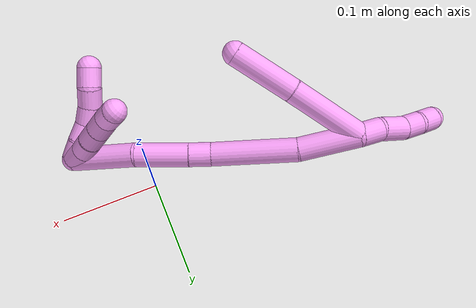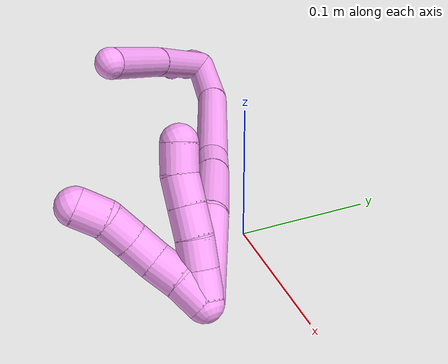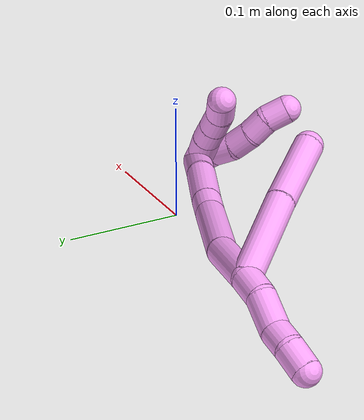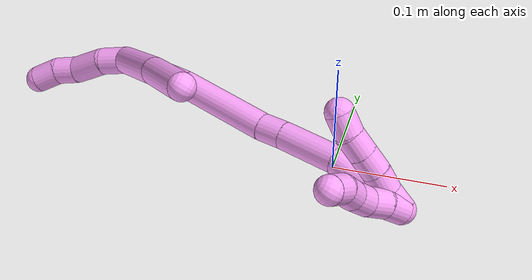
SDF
<sdf version="1.7">
 <world name="default">
  <model name="4">
   <static>0</static>
   <link name="4">
    <collision name="collision-cylinder-e_1_2_8">
     <pose>0.035897 -0.017469 -0.010368 2.10641 1.05583 1.59466</pose>
     <geometry><cylinder><radius>0.0125</radius><length>0.082494</length></cylinder></geometry>
     <surface>
      <friction><ode><mu>1.16</mu><mu2>1.16</mu2><slip1>0</slip1><slip2>0</slip2></ode></friction>
      <contact><ode><kp>1e+06</kp><kd>1</kd><max_vel>0</max_vel><min_depth>0.001</min_depth></ode></contact>
     </surface>
    </collision>
    <visual name="visual-cylinder-e_1_2_8">
     <pose>0.035897 -0.017469 -0.010368 2.10641 1.05583 1.59466</pose>
     <geometry><cylinder><radius>0.0125</radius><length>0.082494</length></cylinder></geometry>
     <material><ambient>1 0.65098 0.996078 1</ambient></material>
    </visual>
    <collision name="collision-cylinder-e_2_8_6">
     <pose>0.100085 -0.05073 -0.030202 2.11085 0.993848 1.5273</pose>
     <geometry><cylinder><radius>0.0125</radius><length>0.067506</length></cylinder></geometry>
     <surface>
      <friction><ode><mu>1.16</mu><mu2>1.16</mu2><slip1>0</slip1><slip2>0</slip2></ode></friction>
      <contact><ode><kp>1e+06</kp><kd>1</kd><max_vel>0</max_vel><min_depth>0.001</min_depth></ode></contact>
     </surface>
    </collision>
    <visual name="visual-cylinder-e_2_8_6">
     <pose>0.100085 -0.05073 -0.030202 2.11085 0.993848 1.5273</pose>
     <geometry><cylinder><radius>0.0125</radius><length>0.067506</length></cylinder></geometry>
     <material><ambient>1 0.65098 0.996078 1</ambient></material>
    </visual>
    <collision name="collision-cylinder-e_1_2_9">
     <pose>-0.008025 -0.002341 0.008811 0.259679 -0.721798 -0.098485</pose>
     <geometry><cylinder><radius>0.0125</radius><length>0.02429</length></cylinder></geometry>
     <surface>
      <friction><ode><mu>1.16</mu><mu2>1.16</mu2><slip1>0</slip1><slip2>0</slip2></ode></friction>
      <contact><ode><kp>1e+06</kp><kd>1</kd><max_vel>0</max_vel><min_depth>0.001</min_depth></ode></contact>
     </surface>
    </collision>
    <visual name="visual-cylinder-e_1_2_9">
     <pose>-0.008025 -0.002341 0.008811 0.259679 -0.721798 -0.098485</pose>
     <geometry><cylinder><radius>0.0125</radius><length>0.02429</length></cylinder></geometry>
     <material><ambient>1 0.65098 0.996078 1</ambient></material>
    </visual>
    <collision name="collision-cylinder-e_2_9_10">
     <pose>-0.029695 -0.008167 0.025544 0.414452 -1.00552 -0.230202</pose>
     <geometry><cylinder><radius>0.0125</radius><length>0.032318</length></cylinder></geometry>
     <surface>
      <friction><ode><mu>1.16</mu><mu2>1.16</mu2><slip1>0</slip1><slip2>0</slip2></ode></friction>
      <contact><ode><kp>1e+06</kp><kd>1</kd><max_vel>0</max_vel><min_depth>0.001</min_depth></ode></contact>
     </surface>
    </collision>
    <visual name="visual-cylinder-e_2_9_10">
     <pose>-0.029695 -0.008167 0.025544 0.414452 -1.00552 -0.230202</pose>
     <geometry><cylinder><radius>0.0125</radius><length>0.032318</length></cylinder></geometry>
     <material><ambient>1 0.65098 0.996078 1</ambient></material>
    </visual>
    <collision name="collision-cylinder-e_3_10_11">
     <pose>-0.049935 -0.013806 0.040839 0.284185 -0.70951 -0.105885</pose>
     <geometry><cylinder><radius>0.0125</radius><length>0.020247</length></cylinder></geometry>
     <surface>
      <friction><ode><mu>1.16</mu><mu2>1.16</mu2><slip1>0</slip1><slip2>0</slip2></ode></friction>
      <contact><ode><kp>1e+06</kp><kd>1</kd><max_vel>0</max_vel><min_depth>0.001</min_depth></ode></contact>
     </surface>
    </collision>
    <visual name="visual-cylinder-e_3_10_11">
     <pose>-0.049935 -0.013806 0.040839 0.284185 -0.70951 -0.105885</pose>
     <geometry><cylinder><radius>0.0125</radius><length>0.020247</length></cylinder></geometry>
     <material><ambient>1 0.65098 0.996078 1</ambient></material>
    </visual>
    <collision name="collision-cylinder-e_4_11_5">
     <pose>-0.065183 -0.020723 0.05424 0.668752 -0.844679 -0.309749</pose>
     <geometry><cylinder><radius>0.0125</radius><length>0.023145</length></cylinder></geometry>
     <surface>
      <friction><ode><mu>1.16</mu><mu2>1.16</mu2><slip1>0</slip1><slip2>0</slip2></ode></friction>
      <contact><ode><kp>1e+06</kp><kd>1</kd><max_vel>0</max_vel><min_depth>0.001</min_depth></ode></contact>
     </surface>
    </collision>
    <visual name="visual-cylinder-e_4_11_5">
     <pose>-0.065183 -0.020723 0.05424 0.668752 -0.844679 -0.309749</pose>
     <geometry><cylinder><radius>0.0125</radius><length>0.023145</length></cylinder></geometry>
     <material><ambient>1 0.65098 0.996078 1</ambient></material>
    </visual>
    <collision name="collision-cylinder-e_1_2_12">
     <pose>0.014864 -0.003635 -0.027811 3.01164 0.48732 2.62959</pose>
     <geometry><cylinder><radius>0.0125</radius><length>0.063486</length></cylinder></geometry>
     <surface>
      <friction><ode><mu>1.16</mu><mu2>1.16</mu2><slip1>0</slip1><slip2>0</slip2></ode></friction>
      <contact><ode><kp>1e+06</kp><kd>1</kd><max_vel>0</max_vel><min_depth>0.001</min_depth></ode></contact>
     </surface>
    </collision>
    <visual name="visual-cylinder-e_1_2_12">
     <pose>0.014864 -0.003635 -0.027811 3.01164 0.48732 2.62959</pose>
     <geometry><cylinder><radius>0.0125</radius><length>0.063486</length></cylinder></geometry>
     <material><ambient>1 0.65098 0.996078 1</ambient></material>
    </visual>
    <collision name="collision-cylinder-e_2_12_13">
     <pose>0.053103 -0.019554 -0.091335 2.81029 0.55423 2.07884</pose>
     <geometry><cylinder><radius>0.0125</radius><length>0.088831</length></cylinder></geometry>
     <surface>
      <friction><ode><mu>1.16</mu><mu2>1.16</mu2><slip1>0</slip1><slip2>0</slip2></ode></friction>
      <contact><ode><kp>1e+06</kp><kd>1</kd><max_vel>0</max_vel><min_depth>0.001</min_depth></ode></contact>
     </surface>
    </collision>
    <visual name="visual-cylinder-e_2_12_13">
     <pose>0.053103 -0.019554 -0.091335 2.81029 0.55423 2.07884</pose>
     <geometry><cylinder><radius>0.0125</radius><length>0.088831</length></cylinder></geometry>
     <material><ambient>1 0.65098 0.996078 1</ambient></material>
    </visual>
    <collision name="collision-cylinder-e_3_13_14">
     <pose>0.083716 -0.034216 -0.135739 2.87451 0.676712 2.4122</pose>
     <geometry><cylinder><radius>0.0125</radius><length>0.023113</length></cylinder></geometry>
     <surface>
      <friction><ode><mu>1.16</mu><mu2>1.16</mu2><slip1>0</slip1><slip2>0</slip2></ode></friction>
      <contact><ode><kp>1e+06</kp><kd>1</kd><max_vel>0</max_vel><min_depth>0.001</min_depth></ode></contact>
     </surface>
    </collision>
    <visual name="visual-cylinder-e_3_13_14">
     <pose>0.083716 -0.034216 -0.135739 2.87451 0.676712 2.4122</pose>
     <geometry><cylinder><radius>0.0125</radius><length>0.023113</length></cylinder></geometry>
     <material><ambient>1 0.65098 0.996078 1</ambient></material>
    </visual>
    <collision name="collision-cylinder-e_4_14_15">
     <pose>0.107596 -0.043619 -0.165085 2.81377 0.651657 2.23114</pose>
     <geometry><cylinder><radius>0.0125</radius><length>0.054881</length></cylinder></geometry>
     <surface>
      <friction><ode><mu>1.16</mu><mu2>1.16</mu2><slip1>0</slip1><slip2>0</slip2></ode></friction>
      <contact><ode><kp>1e+06</kp><kd>1</kd><max_vel>0</max_vel><min_depth>0.001</min_depth></ode></contact>
     </surface>
    </collision>
    <visual name="visual-cylinder-e_4_14_15">
     <pose>0.107596 -0.043619 -0.165085 2.81377 0.651657 2.23114</pose>
     <geometry><cylinder><radius>0.0125</radius><length>0.054881</length></cylinder></geometry>
     <material><ambient>1 0.65098 0.996078 1</ambient></material>
    </visual>
    <collision name="collision-cylinder-e_5_15_1">
     <pose>0.138294 -0.063592 -0.214877 2.72341 0.415216 1.56347</pose>
     <geometry><cylinder><radius>0.0125</radius><length>0.069689</length></cylinder></geometry>
     <surface>
      <friction><ode><mu>1.16</mu><mu2>1.16</mu2><slip1>0</slip1><slip2>0</slip2></ode></friction>
      <contact><ode><kp>1e+06</kp><kd>1</kd><max_vel>0</max_vel><min_depth>0.001</min_depth></ode></contact>
     </surface>
    </collision>
    <visual name="visual-cylinder-e_5_15_1">
     <pose>0.138294 -0.063592 -0.214877 2.72341 0.415216 1.56347</pose>
     <geometry><cylinder><radius>0.0125</radius><length>0.069689</length></cylinder></geometry>
     <material><ambient>1 0.65098 0.996078 1</ambient></material>
    </visual>
    <collision name="collision-cylinder-e_1_1_16">
     <pose>0.154367 -0.07346 -0.234715 -0.319879 0.203036 -0.032863</pose>
     <geometry><cylinder><radius>0.0125</radius><length>0.02</length></cylinder></geometry>
     <surface>
      <friction><ode><mu>1.16</mu><mu2>1.16</mu2><slip1>0</slip1><slip2>0</slip2></ode></friction>
      <contact><ode><kp>1e+06</kp><kd>1</kd><max_vel>0</max_vel><min_depth>0.001</min_depth></ode></contact>
     </surface>
    </collision>
    <visual name="visual-cylinder-e_1_1_16">
     <pose>0.154367 -0.07346 -0.234715 -0.319879 0.203036 -0.032863</pose>
     <geometry><cylinder><radius>0.0125</radius><length>0.02</length></cylinder></geometry>
     <material><ambient>1 0.65098 0.996078 1</ambient></material>
    </visual>
    <collision name="collision-cylinder-e_2_16_17">
     <pose>0.160091 -0.067163 -0.216705 -0.353691 0.379906 -0.068696</pose>
     <geometry><cylinder><radius>0.0125</radius><length>0.02</length></cylinder></geometry>
     <surface>
      <friction><ode><mu>1.16</mu><mu2>1.16</mu2><slip1>0</slip1><slip2>0</slip2></ode></friction>
      <contact><ode><kp>1e+06</kp><kd>1</kd><max_vel>0</max_vel><min_depth>0.001</min_depth></ode></contact>
     </surface>
    </collision>
    <visual name="visual-cylinder-e_2_16_17">
     <pose>0.160091 -0.067163 -0.216705 -0.353691 0.379906 -0.068696</pose>
     <geometry><cylinder><radius>0.0125</radius><length>0.02</length></cylinder></geometry>
     <material><ambient>1 0.65098 0.996078 1</ambient></material>
    </visual>
    <collision name="collision-cylinder-e_3_17_18">
     <pose>0.166926 -0.061517 -0.198811 -0.258682 0.317991 -0.041706</pose>
     <geometry><cylinder><radius>0.0125</radius><length>0.02</length></cylinder></geometry>
     <surface>
      <friction><ode><mu>1.16</mu><mu2>1.16</mu2><slip1>0</slip1><slip2>0</slip2></ode></friction>
      <contact><ode><kp>1e+06</kp><kd>1</kd><max_vel>0</max_vel><min_depth>0.001</min_depth></ode></contact>
     </surface>
    </collision>
    <visual name="visual-cylinder-e_3_17_18">
     <pose>0.166926 -0.061517 -0.198811 -0.258682 0.317991 -0.041706</pose>
     <geometry><cylinder><radius>0.0125</radius><length>0.02</length></cylinder></geometry>
     <material><ambient>1 0.65098 0.996078 1</ambient></material>
    </visual>
    <collision name="collision-cylinder-e_4_18_19">
     <pose>0.173223 -0.056626 -0.180468 -0.262434 0.322546 -0.042934</pose>
     <geometry><cylinder><radius>0.0125</radius><length>0.02</length></cylinder></geometry>
     <surface>
      <friction><ode><mu>1.16</mu><mu2>1.16</mu2><slip1>0</slip1><slip2>0</slip2></ode></friction>
      <contact><ode><kp>1e+06</kp><kd>1</kd><max_vel>0</max_vel><min_depth>0.001</min_depth></ode></contact>
     </surface>
    </collision>
    <visual name="visual-cylinder-e_4_18_19">
     <pose>0.173223 -0.056626 -0.180468 -0.262434 0.322546 -0.042934</pose>
     <geometry><cylinder><radius>0.0125</radius><length>0.02</length></cylinder></geometry>
     <material><ambient>1 0.65098 0.996078 1</ambient></material>
    </visual>
    <collision name="collision-cylinder-e_5_19_4">
     <pose>0.179768 -0.04966 -0.163044 -0.499123 0.344282 -0.088568</pose>
     <geometry><cylinder><radius>0.0125</radius><length>0.02</length></cylinder></geometry>
     <surface>
      <friction><ode><mu>1.16</mu><mu2>1.16</mu2><slip1>0</slip1><slip2>0</slip2></ode></friction>
      <contact><ode><kp>1e+06</kp><kd>1</kd><max_vel>0</max_vel><min_depth>0.001</min_depth></ode></contact>
     </surface>
    </collision>
    <visual name="visual-cylinder-e_5_19_4">
     <pose>0.179768 -0.04966 -0.163044 -0.499123 0.344282 -0.088568</pose>
     <geometry><cylinder><radius>0.0125</radius><length>0.02</length></cylinder></geometry>
     <material><ambient>1 0.65098 0.996078 1</ambient></material>
    </visual>
    <collision name="collision-cylinder-e_1_1_20">
     <pose>0.155741 -0.079772 -0.235178 0.35077 0.345906 0.061895</pose>
     <geometry><cylinder><radius>0.0125</radius><length>0.02</length></cylinder></geometry>
     <surface>
      <friction><ode><mu>1.16</mu><mu2>1.16</mu2><slip1>0</slip1><slip2>0</slip2></ode></friction>
      <contact><ode><kp>1e+06</kp><kd>1</kd><max_vel>0</max_vel><min_depth>0.001</min_depth></ode></contact>
     </surface>
    </collision>
    <visual name="visual-cylinder-e_1_1_20">
     <pose>0.155741 -0.079772 -0.235178 0.35077 0.345906 0.061895</pose>
     <geometry><cylinder><radius>0.0125</radius><length>0.02</length></cylinder></geometry>
     <material><ambient>1 0.65098 0.996078 1</ambient></material>
    </visual>
    <collision name="collision-cylinder-e_2_20_21">
     <pose>0.16133 -0.087539 -0.217706 0.483384 0.221712 0.054866</pose>
     <geometry><cylinder><radius>0.0125</radius><length>0.02</length></cylinder></geometry>
     <surface>
      <friction><ode><mu>1.16</mu><mu2>1.16</mu2><slip1>0</slip1><slip2>0</slip2></ode></friction>
      <contact><ode><kp>1e+06</kp><kd>1</kd><max_vel>0</max_vel><min_depth>0.001</min_depth></ode></contact>
     </surface>
    </collision>
    <visual name="visual-cylinder-e_2_20_21">
     <pose>0.16133 -0.087539 -0.217706 0.483384 0.221712 0.054866</pose>
     <geometry><cylinder><radius>0.0125</radius><length>0.02</length></cylinder></geometry>
     <material><ambient>1 0.65098 0.996078 1</ambient></material>
    </visual>
    <collision name="collision-cylinder-e_3_21_22">
     <pose>0.168345 -0.095496 -0.201 0.401247 0.502454 0.104289</pose>
     <geometry><cylinder><radius>0.0125</radius><length>0.02</length></cylinder></geometry>
     <surface>
      <friction><ode><mu>1.16</mu><mu2>1.16</mu2><slip1>0</slip1><slip2>0</slip2></ode></friction>
      <contact><ode><kp>1e+06</kp><kd>1</kd><max_vel>0</max_vel><min_depth>0.001</min_depth></ode></contact>
     </surface>
    </collision>
    <visual name="visual-cylinder-e_3_21_22">
     <pose>0.168345 -0.095496 -0.201 0.401247 0.502454 0.104289</pose>
     <geometry><cylinder><radius>0.0125</radius><length>0.02</length></cylinder></geometry>
     <material><ambient>1 0.65098 0.996078 1</ambient></material>
    </visual>
    <collision name="collision-cylinder-e_4_22_23">
     <pose>0.179568 -0.102067 -0.18593 0.422438 0.695471 0.155125</pose>
     <geometry><cylinder><radius>0.0125</radius><length>0.02</length></cylinder></geometry>
     <surface>
      <friction><ode><mu>1.16</mu><mu2>1.16</mu2><slip1>0</slip1><slip2>0</slip2></ode></friction>
      <contact><ode><kp>1e+06</kp><kd>1</kd><max_vel>0</max_vel><min_depth>0.001</min_depth></ode></contact>
     </surface>
    </collision>
    <visual name="visual-cylinder-e_4_22_23">
     <pose>0.179568 -0.102067 -0.18593 0.422438 0.695471 0.155125</pose>
     <geometry><cylinder><radius>0.0125</radius><length>0.02</length></cylinder></geometry>
     <material><ambient>1 0.65098 0.996078 1</ambient></material>
    </visual>
    <collision name="collision-cylinder-e_5_23_3">
     <pose>0.190975 -0.111237 -0.172703 0.768983 0.523504 0.215956</pose>
     <geometry><cylinder><radius>0.0125</radius><length>0.02</length></cylinder></geometry>
     <surface>
      <friction><ode><mu>1.16</mu><mu2>1.16</mu2><slip1>0</slip1><slip2>0</slip2></ode></friction>
      <contact><ode><kp>1e+06</kp><kd>1</kd><max_vel>0</max_vel><min_depth>0.001</min_depth></ode></contact>
     </surface>
    </collision>
    <visual name="visual-cylinder-e_5_23_3">
     <pose>0.190975 -0.111237 -0.172703 0.768983 0.523504 0.215956</pose>
     <geometry><cylinder><radius>0.0125</radius><length>0.02</length></cylinder></geometry>
     <material><ambient>1 0.65098 0.996078 1</ambient></material>
    </visual>
    <collision name="collision-sphere-3">
     <pose>0.195974 -0.11726 -0.16648 0 -0 0</pose>
     <geometry><sphere><radius>0.0125</radius></sphere></geometry>
     <surface>
      <friction><ode><mu>1.16</mu><mu2>1.16</mu2><slip1>0</slip1><slip2>0</slip2></ode></friction>
      <contact><ode><kp>1e+06</kp><kd>1</kd><max_vel>0</max_vel><min_depth>0.001</min_depth></ode></contact>
     </surface>
    </collision>
    <visual name="visual-sphere-3">
     <pose>0.195974 -0.11726 -0.16648 0 -0 0</pose>
     <geometry><sphere><radius>0.0125</radius></sphere></geometry>
     <material><ambient>1 0.65098 0.996078 1</ambient></material>
    </visual>
    <collision name="collision-sphere-23">
     <pose>0.185976 -0.105214 -0.178927 0 -0 0</pose>
     <geometry><sphere><radius>0.0125</radius></sphere></geometry>
     <surface>
      <friction><ode><mu>1.16</mu><mu2>1.16</mu2><slip1>0</slip1><slip2>0</slip2></ode></friction>
      <contact><ode><kp>1e+06</kp><kd>1</kd><max_vel>0</max_vel><min_depth>0.001</min_depth></ode></contact>
     </surface>
    </collision>
    <visual name="visual-sphere-23">
     <pose>0.185976 -0.105214 -0.178927 0 -0 0</pose>
     <geometry><sphere><radius>0.0125</radius></sphere></geometry>
     <material><ambient>1 0.65098 0.996078 1</ambient></material>
    </visual>
    <collision name="collision-sphere-22">
     <pose>0.173161 -0.098919 -0.192932 0 -0 0</pose>
     <geometry><sphere><radius>0.0125</radius></sphere></geometry>
     <surface>
      <friction><ode><mu>1.16</mu><mu2>1.16</mu2><slip1>0</slip1><slip2>0</slip2></ode></friction>
      <contact><ode><kp>1e+06</kp><kd>1</kd><max_vel>0</max_vel><min_depth>0.001</min_depth></ode></contact>
     </surface>
    </collision>
    <visual name="visual-sphere-22">
     <pose>0.173161 -0.098919 -0.192932 0 -0 0</pose>
     <geometry><sphere><radius>0.0125</radius></sphere></geometry>
     <material><ambient>1 0.65098 0.996078 1</ambient></material>
    </visual>
    <collision name="collision-sphere-21">
     <pose>0.163529 -0.092073 -0.209068 0 -0 0</pose>
     <geometry><sphere><radius>0.0125</radius></sphere></geometry>
     <surface>
      <friction><ode><mu>1.16</mu><mu2>1.16</mu2><slip1>0</slip1><slip2>0</slip2></ode></friction>
      <contact><ode><kp>1e+06</kp><kd>1</kd><max_vel>0</max_vel><min_depth>0.001</min_depth></ode></contact>
     </surface>
    </collision>
    <visual name="visual-sphere-21">
     <pose>0.163529 -0.092073 -0.209068 0 -0 0</pose>
     <geometry><sphere><radius>0.0125</radius></sphere></geometry>
     <material><ambient>1 0.65098 0.996078 1</ambient></material>
    </visual>
    <collision name="collision-sphere-20">
     <pose>0.159131 -0.083005 -0.226343 0 -0 0</pose>
     <geometry><sphere><radius>0.0125</radius></sphere></geometry>
     <surface>
      <friction><ode><mu>1.16</mu><mu2>1.16</mu2><slip1>0</slip1><slip2>0</slip2></ode></friction>
      <contact><ode><kp>1e+06</kp><kd>1</kd><max_vel>0</max_vel><min_depth>0.001</min_depth></ode></contact>
     </surface>
    </collision>
    <visual name="visual-sphere-20">
     <pose>0.159131 -0.083005 -0.226343 0 -0 0</pose>
     <geometry><sphere><radius>0.0125</radius></sphere></geometry>
     <material><ambient>1 0.65098 0.996078 1</ambient></material>
    </visual>
    <collision name="collision-sphere-4">
     <pose>0.183143 -0.045154 -0.154779 0 -0 0</pose>
     <geometry><sphere><radius>0.0125</radius></sphere></geometry>
     <surface>
      <friction><ode><mu>1.16</mu><mu2>1.16</mu2><slip1>0</slip1><slip2>0</slip2></ode></friction>
      <contact><ode><kp>1e+06</kp><kd>1</kd><max_vel>0</max_vel><min_depth>0.001</min_depth></ode></contact>
     </surface>
    </collision>
    <visual name="visual-sphere-4">
     <pose>0.183143 -0.045154 -0.154779 0 -0 0</pose>
     <geometry><sphere><radius>0.0125</radius></sphere></geometry>
     <material><ambient>1 0.65098 0.996078 1</ambient></material>
    </visual>
    <collision name="collision-sphere-11">
     <pose>-0.05653 -0.015959 0.048211 0 -0 0</pose>
     <geometry><sphere><radius>0.0125</radius></sphere></geometry>
     <surface>
      <friction><ode><mu>1.16</mu><mu2>1.16</mu2><slip1>0</slip1><slip2>0</slip2></ode></friction>
      <contact><ode><kp>1e+06</kp><kd>1</kd><max_vel>0</max_vel><min_depth>0.001</min_depth></ode></contact>
     </surface>
    </collision>
    <visual name="visual-sphere-11">
     <pose>-0.05653 -0.015959 0.048211 0 -0 0</pose>
     <geometry><sphere><radius>0.0125</radius></sphere></geometry>
     <material><ambient>1 0.65098 0.996078 1</ambient></material>
    </visual>
    <collision name="collision-sphere-10">
     <pose>-0.04334 -0.011652 0.033467 0 -0 0</pose>
     <geometry><sphere><radius>0.0125</radius></sphere></geometry>
     <surface>
      <friction><ode><mu>1.16</mu><mu2>1.16</mu2><slip1>0</slip1><slip2>0</slip2></ode></friction>
      <contact><ode><kp>1e+06</kp><kd>1</kd><max_vel>0</max_vel><min_depth>0.001</min_depth></ode></contact>
     </surface>
    </collision>
    <visual name="visual-sphere-10">
     <pose>-0.04334 -0.011652 0.033467 0 -0 0</pose>
     <geometry><sphere><radius>0.0125</radius></sphere></geometry>
     <material><ambient>1 0.65098 0.996078 1</ambient></material>
    </visual>
    <collision name="collision-sphere-6">
     <pose>0.128374 -0.066521 -0.039669 0 -0 0</pose>
     <geometry><sphere><radius>0.0125</radius></sphere></geometry>
     <surface>
      <friction><ode><mu>1.16</mu><mu2>1.16</mu2><slip1>0</slip1><slip2>0</slip2></ode></friction>
      <contact><ode><kp>1e+06</kp><kd>1</kd><max_vel>0</max_vel><min_depth>0.001</min_depth></ode></contact>
     </surface>
    </collision>
    <visual name="visual-sphere-6">
     <pose>0.128374 -0.066521 -0.039669 0 -0 0</pose>
     <geometry><sphere><radius>0.0125</radius></sphere></geometry>
     <material><ambient>1 0.65098 0.996078 1</ambient></material>
    </visual>
    <collision name="collision-sphere-9">
     <pose>-0.016049 -0.004682 0.017621 0 -0 0</pose>
     <geometry><sphere><radius>0.0125</radius></sphere></geometry>
     <surface>
      <friction><ode><mu>1.16</mu><mu2>1.16</mu2><slip1>0</slip1><slip2>0</slip2></ode></friction>
      <contact><ode><kp>1e+06</kp><kd>1</kd><max_vel>0</max_vel><min_depth>0.001</min_depth></ode></contact>
     </surface>
    </collision>
    <visual name="visual-sphere-9">
     <pose>-0.016049 -0.004682 0.017621 0 -0 0</pose>
     <geometry><sphere><radius>0.0125</radius></sphere></geometry>
     <material><ambient>1 0.65098 0.996078 1</ambient></material>
    </visual>
    <collision name="collision-sphere-2">
     <geometry><sphere><radius>0.0125</radius></sphere></geometry>
     <surface>
      <friction><ode><mu>1.16</mu><mu2>1.16</mu2><slip1>0</slip1><slip2>0</slip2></ode></friction>
      <contact><ode><kp>1e+06</kp><kd>1</kd><max_vel>0</max_vel><min_depth>0.001</min_depth></ode></contact>
     </surface>
    </collision>
    <visual name="visual-sphere-2">
     <geometry><sphere><radius>0.0125</radius></sphere></geometry>
     <material><ambient>1 0.65098 0.996078 1</ambient></material>
    </visual>
    <collision name="collision-sphere-19">
     <pose>0.176393 -0.054166 -0.171309 0 -0 0</pose>
     <geometry><sphere><radius>0.0125</radius></sphere></geometry>
     <surface>
      <friction><ode><mu>1.16</mu><mu2>1.16</mu2><slip1>0</slip1><slip2>0</slip2></ode></friction>
      <contact><ode><kp>1e+06</kp><kd>1</kd><max_vel>0</max_vel><min_depth>0.001</min_depth></ode></contact>
     </surface>
    </collision>
    <visual name="visual-sphere-19">
     <pose>0.176393 -0.054166 -0.171309 0 -0 0</pose>
     <geometry><sphere><radius>0.0125</radius></sphere></geometry>
     <material><ambient>1 0.65098 0.996078 1</ambient></material>
    </visual>
    <collision name="collision-sphere-8">
     <pose>0.071795 -0.034939 -0.020736 0 -0 0</pose>
     <geometry><sphere><radius>0.0125</radius></sphere></geometry>
     <surface>
      <friction><ode><mu>1.16</mu><mu2>1.16</mu2><slip1>0</slip1><slip2>0</slip2></ode></friction>
      <contact><ode><kp>1e+06</kp><kd>1</kd><max_vel>0</max_vel><min_depth>0.001</min_depth></ode></contact>
     </surface>
    </collision>
    <visual name="visual-sphere-8">
     <pose>0.071795 -0.034939 -0.020736 0 -0 0</pose>
     <geometry><sphere><radius>0.0125</radius></sphere></geometry>
     <material><ambient>1 0.65098 0.996078 1</ambient></material>
    </visual>
    <collision name="collision-sphere-5">
     <pose>-0.073837 -0.025487 0.060269 0 -0 0</pose>
     <geometry><sphere><radius>0.0125</radius></sphere></geometry>
     <surface>
      <friction><ode><mu>1.16</mu><mu2>1.16</mu2><slip1>0</slip1><slip2>0</slip2></ode></friction>
      <contact><ode><kp>1e+06</kp><kd>1</kd><max_vel>0</max_vel><min_depth>0.001</min_depth></ode></contact>
     </surface>
    </collision>
    <visual name="visual-sphere-5">
     <pose>-0.073837 -0.025487 0.060269 0 -0 0</pose>
     <geometry><sphere><radius>0.0125</radius></sphere></geometry>
     <material><ambient>1 0.65098 0.996078 1</ambient></material>
    </visual>
    <collision name="collision-sphere-12">
     <pose>0.029728 -0.007269 -0.055623 0 -0 0</pose>
     <geometry><sphere><radius>0.0125</radius></sphere></geometry>
     <surface>
      <friction><ode><mu>1.16</mu><mu2>1.16</mu2><slip1>0</slip1><slip2>0</slip2></ode></friction>
      <contact><ode><kp>1e+06</kp><kd>1</kd><max_vel>0</max_vel><min_depth>0.001</min_depth></ode></contact>
     </surface>
    </collision>
    <visual name="visual-sphere-12">
     <pose>0.029728 -0.007269 -0.055623 0 -0 0</pose>
     <geometry><sphere><radius>0.0125</radius></sphere></geometry>
     <material><ambient>1 0.65098 0.996078 1</ambient></material>
    </visual>
    <collision name="collision-sphere-13">
     <pose>0.076478 -0.031838 -0.127048 0 -0 0</pose>
     <geometry><sphere><radius>0.0125</radius></sphere></geometry>
     <surface>
      <friction><ode><mu>1.16</mu><mu2>1.16</mu2><slip1>0</slip1><slip2>0</slip2></ode></friction>
      <contact><ode><kp>1e+06</kp><kd>1</kd><max_vel>0</max_vel><min_depth>0.001</min_depth></ode></contact>
     </surface>
    </collision>
    <visual name="visual-sphere-13">
     <pose>0.076478 -0.031838 -0.127048 0 -0 0</pose>
     <geometry><sphere><radius>0.0125</radius></sphere></geometry>
     <material><ambient>1 0.65098 0.996078 1</ambient></material>
    </visual>
    <collision name="collision-sphere-14">
     <pose>0.090953 -0.036594 -0.144429 0 -0 0</pose>
     <geometry><sphere><radius>0.0125</radius></sphere></geometry>
     <surface>
      <friction><ode><mu>1.16</mu><mu2>1.16</mu2><slip1>0</slip1><slip2>0</slip2></ode></friction>
      <contact><ode><kp>1e+06</kp><kd>1</kd><max_vel>0</max_vel><min_depth>0.001</min_depth></ode></contact>
     </surface>
    </collision>
    <visual name="visual-sphere-14">
     <pose>0.090953 -0.036594 -0.144429 0 -0 0</pose>
     <geometry><sphere><radius>0.0125</radius></sphere></geometry>
     <material><ambient>1 0.65098 0.996078 1</ambient></material>
    </visual>
    <collision name="collision-sphere-15">
     <pose>0.124238 -0.050644 -0.185741 0 -0 0</pose>
     <geometry><sphere><radius>0.0125</radius></sphere></geometry>
     <surface>
      <friction><ode><mu>1.16</mu><mu2>1.16</mu2><slip1>0</slip1><slip2>0</slip2></ode></friction>
      <contact><ode><kp>1e+06</kp><kd>1</kd><max_vel>0</max_vel><min_depth>0.001</min_depth></ode></contact>
     </surface>
    </collision>
    <visual name="visual-sphere-15">
     <pose>0.124238 -0.050644 -0.185741 0 -0 0</pose>
     <geometry><sphere><radius>0.0125</radius></sphere></geometry>
     <material><ambient>1 0.65098 0.996078 1</ambient></material>
    </visual>
    <collision name="collision-sphere-1">
     <pose>0.15235 -0.07654 -0.244013 0 -0 0</pose>
     <geometry><sphere><radius>0.0125</radius></sphere></geometry>
     <surface>
      <friction><ode><mu>1.16</mu><mu2>1.16</mu2><slip1>0</slip1><slip2>0</slip2></ode></friction>
      <contact><ode><kp>1e+06</kp><kd>1</kd><max_vel>0</max_vel><min_depth>0.001</min_depth></ode></contact>
     </surface>
    </collision>
    <visual name="visual-sphere-1">
     <pose>0.15235 -0.07654 -0.244013 0 -0 0</pose>
     <geometry><sphere><radius>0.0125</radius></sphere></geometry>
     <material><ambient>1 0.65098 0.996078 1</ambient></material>
    </visual>
    <collision name="collision-sphere-18">
     <pose>0.170053 -0.059087 -0.189628 0 -0 0</pose>
     <geometry><sphere><radius>0.0125</radius></sphere></geometry>
     <surface>
      <friction><ode><mu>1.16</mu><mu2>1.16</mu2><slip1>0</slip1><slip2>0</slip2></ode></friction>
      <contact><ode><kp>1e+06</kp><kd>1</kd><max_vel>0</max_vel><min_depth>0.001</min_depth></ode></contact>
     </surface>
    </collision>
    <visual name="visual-sphere-18">
     <pose>0.170053 -0.059087 -0.189628 0 -0 0</pose>
     <geometry><sphere><radius>0.0125</radius></sphere></geometry>
     <material><ambient>1 0.65098 0.996078 1</ambient></material>
    </visual>
    <collision name="collision-sphere-16">
     <pose>0.156383 -0.07038 -0.225418 0 -0 0</pose>
     <geometry><sphere><radius>0.0125</radius></sphere></geometry>
     <surface>
      <friction><ode><mu>1.16</mu><mu2>1.16</mu2><slip1>0</slip1><slip2>0</slip2></ode></friction>
      <contact><ode><kp>1e+06</kp><kd>1</kd><max_vel>0</max_vel><min_depth>0.001</min_depth></ode></contact>
     </surface>
    </collision>
    <visual name="visual-sphere-16">
     <pose>0.156383 -0.07038 -0.225418 0 -0 0</pose>
     <geometry><sphere><radius>0.0125</radius></sphere></geometry>
     <material><ambient>1 0.65098 0.996078 1</ambient></material>
    </visual>
    <collision name="collision-sphere-17">
     <pose>0.1638 -0.063946 -0.207993 0 -0 0</pose>
     <geometry><sphere><radius>0.0125</radius></sphere></geometry>
     <surface>
      <friction><ode><mu>1.16</mu><mu2>1.16</mu2><slip1>0</slip1><slip2>0</slip2></ode></friction>
      <contact><ode><kp>1e+06</kp><kd>1</kd><max_vel>0</max_vel><min_depth>0.001</min_depth></ode></contact>
     </surface>
    </collision>
    <visual name="visual-sphere-17">
     <pose>0.1638 -0.063946 -0.207993 0 -0 0</pose>
     <geometry><sphere><radius>0.0125</radius></sphere></geometry>
     <material><ambient>1 0.65098 0.996078 1</ambient></material>
    </visual>
    <inertial>
     <pose>0.083985 -0.041627 -0.102598 0 -0 0</pose>
     <mass>0.75</mass>
     <inertia>
      <ixx>0.000124</ixx>
      <ixy>0</ixy>
      <ixz>0</ixz>
      <iyy>0.000278</iyy>
      <iyz>0</iyz>
      <izz>-6.4e-05</izz>
     </inertia>
    </inertial>
   </link>
   <pose>-0.207842 0.046164 0.047841 0.663727 -0.875535 -0.665548</pose>
  </model>
 </world>
</sdf>
